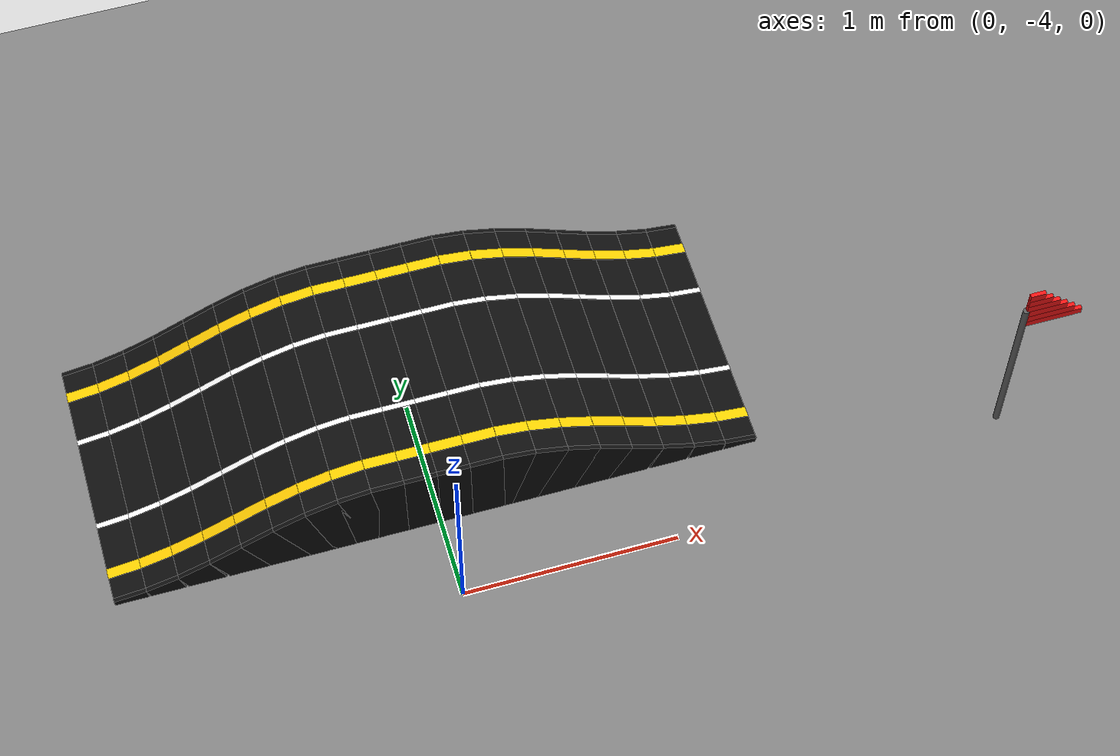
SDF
<sdf version="1.8">
 <world name="default">
  <model name="ground_plane">
   <static>true</static>
   <link name="link">
    <visual name="visual">
     <geometry><plane><normal>0 0 1</normal><size>100 100</size></plane></geometry>
     <material><ambient>0.5 0.5 0.5 1</ambient><diffuse>0.5 0.5 0.5 1</diffuse></material>
    </visual>
   </link>
  </model>
  <model name="race_B_start_finish_flag_outer">
   <static>true</static>
   <pose>2.60 -3.82 0.02 0 0 0</pose>
   <link name="flag_link">
    <collision name="pole_collision">
     <pose>0 0 0.45 0 0 0</pose>
     <geometry><cylinder><radius>0.015</radius><length>0.90</length></cylinder></geometry>
    </collision>
    <visual name="pole_visual">
     <pose>0 0 0.45 0 0 0</pose>
     <geometry><cylinder><radius>0.015</radius><length>0.90</length></cylinder></geometry>
     <material><ambient>0.25 0.25 0.25 1</ambient><diffuse>0.35 0.35 0.35 1</diffuse></material>
    </visual>
    <visual name="flag_bar_00_visual">
     <pose>0.135 0 0.80 0 0 0</pose>
     <geometry><box><size>0.27 0.018 0.035</size></box></geometry>
     <material>
      <ambient>0.85 0.05 0.05 1</ambient>
      <diffuse>0.95 0.08 0.08 1</diffuse>
      <emissive>0.10 0.00 0.00 1</emissive>
     </material>
    </visual>
    <visual name="flag_bar_01_visual">
     <pose>0.115 0 0.84 0 0 0</pose>
     <geometry><box><size>0.23 0.018 0.035</size></box></geometry>
     <material>
      <ambient>0.85 0.05 0.05 1</ambient>
      <diffuse>0.95 0.08 0.08 1</diffuse>
      <emissive>0.10 0.00 0.00 1</emissive>
     </material>
    </visual>
    <visual name="flag_bar_02_visual">
     <pose>0.095 0 0.88 0 0 0</pose>
     <geometry><box><size>0.19 0.018 0.035</size></box></geometry>
     <material>
      <ambient>0.85 0.05 0.05 1</ambient>
      <diffuse>0.95 0.08 0.08 1</diffuse>
      <emissive>0.10 0.00 0.00 1</emissive>
     </material>
    </visual>
    <visual name="flag_bar_03_visual">
     <pose>0.075 0 0.92 0 0 0</pose>
     <geometry><box><size>0.15 0.018 0.035</size></box></geometry>
     <material>
      <ambient>0.85 0.05 0.05 1</ambient>
      <diffuse>0.95 0.08 0.08 1</diffuse>
      <emissive>0.10 0.00 0.00 1</emissive>
     </material>
    </visual>
    <visual name="flag_bar_04_visual">
     <pose>0.055 0 0.96 0 0 0</pose>
     <geometry><box><size>0.11 0.018 0.035</size></box></geometry>
     <material>
      <ambient>0.85 0.05 0.05 1</ambient>
      <diffuse>0.95 0.08 0.08 1</diffuse>
      <emissive>0.10 0.00 0.00 1</emissive>
     </material>
    </visual>
    <visual name="flag_bar_05_visual">
     <pose>0.035 0 1.00 0 0 0</pose>
     <geometry><box><size>0.07 0.018 0.035</size></box></geometry>
     <material>
      <ambient>0.85 0.05 0.05 1</ambient>
      <diffuse>0.95 0.08 0.08 1</diffuse>
      <emissive>0.10 0.00 0.00 1</emissive>
     </material>
    </visual>
   </link>
  </model>
  <model name="race_A_ramp">
   <static>true</static>
   <pose>0 -3.0 0 0 0 0</pose>
   <link name="race_A_ramp_link">
    <collision name="race_A_ramp_seg_00_collision">
     <pose>1.422217 0 0.014735 0 0.139626 0</pose>
     <geometry><box><size>0.1515 1.20 0.04</size></box></geometry>
    </collision>
    <visual name="race_A_ramp_seg_00_visual">
     <pose>1.422217 0 0.014735 0 0.139626 0</pose>
     <geometry><box><size>0.1515 1.20 0.04</size></box></geometry>
     <material><ambient>0.05 0.05 0.05 1</ambient><diffuse>0.05 0.05 0.05 1</diffuse></material>
    </visual>
    <collision name="race_A_ramp_seg_01_collision">
     <pose>1.269487 0 0.047362 0 0.279253 0</pose>
     <geometry><box><size>0.1560 1.20 0.04</size></box></geometry>
    </collision>
    <visual name="race_A_ramp_seg_01_visual">
     <pose>1.269487 0 0.047362 0 0.279253 0</pose>
     <geometry><box><size>0.1560 1.20 0.04</size></box></geometry>
     <material><ambient>0.05 0.05 0.05 1</ambient><diffuse>0.05 0.05 0.05 1</diffuse></material>
    </visual>
    <collision name="race_A_ramp_seg_02_collision">
     <pose>1.117508 0 0.099851 0 0.383972 0</pose>
     <geometry><box><size>0.1618 1.20 0.04</size></box></geometry>
    </collision>
    <visual name="race_A_ramp_seg_02_visual">
     <pose>1.117508 0 0.099851 0 0.383972 0</pose>
     <geometry><box><size>0.1618 1.20 0.04</size></box></geometry>
     <material><ambient>0.05 0.05 0.05 1</ambient><diffuse>0.05 0.05 0.05 1</diffuse></material>
    </visual>
    <collision name="race_A_ramp_seg_03_collision">
     <pose>0.966233 0 0.167301 0 0.453786 0</pose>
     <geometry><box><size>0.1669 1.20 0.04</size></box></geometry>
    </collision>
    <visual name="race_A_ramp_seg_03_visual">
     <pose>0.966233 0 0.167301 0 0.453786 0</pose>
     <geometry><box><size>0.1669 1.20 0.04</size></box></geometry>
     <material><ambient>0.05 0.05 0.05 1</ambient><diffuse>0.05 0.05 0.05 1</diffuse></material>
    </visual>
    <collision name="race_A_ramp_seg_04_collision">
     <pose>0.816233 0 0.240461 0 0.453786 0</pose>
     <geometry><box><size>0.1669 1.20 0.04</size></box></geometry>
    </collision>
    <visual name="race_A_ramp_seg_04_visual">
     <pose>0.816233 0 0.240461 0 0.453786 0</pose>
     <geometry><box><size>0.1669 1.20 0.04</size></box></geometry>
     <material><ambient>0.05 0.05 0.05 1</ambient><diffuse>0.05 0.05 0.05 1</diffuse></material>
    </visual>
    <collision name="race_A_ramp_seg_05_collision">
     <pose>0.667508 0 0.306775 0 0.383972 0</pose>
     <geometry><box><size>0.1618 1.20 0.04</size></box></geometry>
    </collision>
    <visual name="race_A_ramp_seg_05_visual">
     <pose>0.667508 0 0.306775 0 0.383972 0</pose>
     <geometry><box><size>0.1618 1.20 0.04</size></box></geometry>
     <material><ambient>0.05 0.05 0.05 1</ambient><diffuse>0.05 0.05 0.05 1</diffuse></material>
    </visual>
    <collision name="race_A_ramp_seg_06_collision">
     <pose>0.519487 0 0.357901 0 0.279253 0</pose>
     <geometry><box><size>0.1560 1.20 0.04</size></box></geometry>
    </collision>
    <visual name="race_A_ramp_seg_06_visual">
     <pose>0.519487 0 0.357901 0 0.279253 0</pose>
     <geometry><box><size>0.1560 1.20 0.04</size></box></geometry>
     <material><ambient>0.05 0.05 0.05 1</ambient><diffuse>0.05 0.05 0.05 1</diffuse></material>
    </visual>
    <collision name="race_A_ramp_seg_07_collision">
     <pose>0.372217 0 0.389368 0 0.139626 0</pose>
     <geometry><box><size>0.1515 1.20 0.04</size></box></geometry>
    </collision>
    <visual name="race_A_ramp_seg_07_visual">
     <pose>0.372217 0 0.389368 0 0.139626 0</pose>
     <geometry><box><size>0.1515 1.20 0.04</size></box></geometry>
     <material><ambient>0.05 0.05 0.05 1</ambient><diffuse>0.05 0.05 0.05 1</diffuse></material>
    </visual>
    <collision name="race_A_ramp_seg_08_collision">
     <pose>0.225000 0 0.399714 0 0.000000 0</pose>
     <geometry><box><size>0.1500 1.20 0.04</size></box></geometry>
    </collision>
    <visual name="race_A_ramp_seg_08_visual">
     <pose>0.225000 0 0.399714 0 0.000000 0</pose>
     <geometry><box><size>0.1500 1.20 0.04</size></box></geometry>
     <material><ambient>0.05 0.05 0.05 1</ambient><diffuse>0.05 0.05 0.05 1</diffuse></material>
    </visual>
    <collision name="race_A_ramp_seg_09_collision">
     <pose>0.075000 0 0.399714 0 0.000000 0</pose>
     <geometry><box><size>0.1500 1.20 0.04</size></box></geometry>
    </collision>
    <visual name="race_A_ramp_seg_09_visual">
     <pose>0.075000 0 0.399714 0 0.000000 0</pose>
     <geometry><box><size>0.1500 1.20 0.04</size></box></geometry>
     <material><ambient>0.05 0.05 0.05 1</ambient><diffuse>0.05 0.05 0.05 1</diffuse></material>
    </visual>
    <collision name="race_A_ramp_seg_10_collision">
     <pose>-0.075000 0 0.399714 0 0.000000 0</pose>
     <geometry><box><size>0.1500 1.20 0.04</size></box></geometry>
    </collision>
    <visual name="race_A_ramp_seg_10_visual">
     <pose>-0.075000 0 0.399714 0 0.000000 0</pose>
     <geometry><box><size>0.1500 1.20 0.04</size></box></geometry>
     <material><ambient>0.05 0.05 0.05 1</ambient><diffuse>0.05 0.05 0.05 1</diffuse></material>
    </visual>
    <collision name="race_A_ramp_seg_11_collision">
     <pose>-0.225000 0 0.399714 0 0.000000 0</pose>
     <geometry><box><size>0.1500 1.20 0.04</size></box></geometry>
    </collision>
    <visual name="race_A_ramp_seg_11_visual">
     <pose>-0.225000 0 0.399714 0 0.000000 0</pose>
     <geometry><box><size>0.1500 1.20 0.04</size></box></geometry>
     <material><ambient>0.05 0.05 0.05 1</ambient><diffuse>0.05 0.05 0.05 1</diffuse></material>
    </visual>
    <collision name="race_A_ramp_seg_12_collision">
     <pose>-0.372217 0 0.389368 0 -0.139626 0</pose>
     <geometry><box><size>0.1515 1.20 0.04</size></box></geometry>
    </collision>
    <visual name="race_A_ramp_seg_12_visual">
     <pose>-0.372217 0 0.389368 0 -0.139626 0</pose>
     <geometry><box><size>0.1515 1.20 0.04</size></box></geometry>
     <material><ambient>0.05 0.05 0.05 1</ambient><diffuse>0.05 0.05 0.05 1</diffuse></material>
    </visual>
    <collision name="race_A_ramp_seg_13_collision">
     <pose>-0.519487 0 0.357901 0 -0.279253 0</pose>
     <geometry><box><size>0.1560 1.20 0.04</size></box></geometry>
    </collision>
    <visual name="race_A_ramp_seg_13_visual">
     <pose>-0.519487 0 0.357901 0 -0.279253 0</pose>
     <geometry><box><size>0.1560 1.20 0.04</size></box></geometry>
     <material><ambient>0.05 0.05 0.05 1</ambient><diffuse>0.05 0.05 0.05 1</diffuse></material>
    </visual>
    <collision name="race_A_ramp_seg_14_collision">
     <pose>-0.667508 0 0.306775 0 -0.383972 0</pose>
     <geometry><box><size>0.1618 1.20 0.04</size></box></geometry>
    </collision>
    <visual name="race_A_ramp_seg_14_visual">
     <pose>-0.667508 0 0.306775 0 -0.383972 0</pose>
     <geometry><box><size>0.1618 1.20 0.04</size></box></geometry>
     <material><ambient>0.05 0.05 0.05 1</ambient><diffuse>0.05 0.05 0.05 1</diffuse></material>
    </visual>
    <collision name="race_A_ramp_seg_15_collision">
     <pose>-0.816233 0 0.240461 0 -0.453786 0</pose>
     <geometry><box><size>0.1669 1.20 0.04</size></box></geometry>
    </collision>
    <visual name="race_A_ramp_seg_15_visual">
     <pose>-0.816233 0 0.240461 0 -0.453786 0</pose>
     <geometry><box><size>0.1669 1.20 0.04</size></box></geometry>
     <material><ambient>0.05 0.05 0.05 1</ambient><diffuse>0.05 0.05 0.05 1</diffuse></material>
    </visual>
    <collision name="race_A_ramp_seg_16_collision">
     <pose>-0.966233 0 0.167301 0 -0.453786 0</pose>
     <geometry><box><size>0.1669 1.20 0.04</size></box></geometry>
    </collision>
    <visual name="race_A_ramp_seg_16_visual">
     <pose>-0.966233 0 0.167301 0 -0.453786 0</pose>
     <geometry><box><size>0.1669 1.20 0.04</size></box></geometry>
     <material><ambient>0.05 0.05 0.05 1</ambient><diffuse>0.05 0.05 0.05 1</diffuse></material>
    </visual>
    <collision name="race_A_ramp_seg_17_collision">
     <pose>-1.117508 0 0.099851 0 -0.383972 0</pose>
     <geometry><box><size>0.1618 1.20 0.04</size></box></geometry>
    </collision>
    <visual name="race_A_ramp_seg_17_visual">
     <pose>-1.117508 0 0.099851 0 -0.383972 0</pose>
     <geometry><box><size>0.1618 1.20 0.04</size></box></geometry>
     <material><ambient>0.05 0.05 0.05 1</ambient><diffuse>0.05 0.05 0.05 1</diffuse></material>
    </visual>
    <collision name="race_A_ramp_seg_18_collision">
     <pose>-1.269487 0 0.047362 0 -0.279253 0</pose>
     <geometry><box><size>0.1560 1.20 0.04</size></box></geometry>
    </collision>
    <visual name="race_A_ramp_seg_18_visual">
     <pose>-1.269487 0 0.047362 0 -0.279253 0</pose>
     <geometry><box><size>0.1560 1.20 0.04</size></box></geometry>
     <material><ambient>0.05 0.05 0.05 1</ambient><diffuse>0.05 0.05 0.05 1</diffuse></material>
    </visual>
    <collision name="race_A_ramp_seg_19_collision">
     <pose>-1.422217 0 0.014735 0 -0.139626 0</pose>
     <geometry><box><size>0.1515 1.20 0.04</size></box></geometry>
    </collision>
    <visual name="race_A_ramp_seg_19_visual">
     <pose>-1.422217 0 0.014735 0 -0.139626 0</pose>
     <geometry><box><size>0.1515 1.20 0.04</size></box></geometry>
     <material><ambient>0.05 0.05 0.05 1</ambient><diffuse>0.05 0.05 0.05 1</diffuse></material>
    </visual>
    <visual name="race_A_ramp_left_side_cover_seg_00_visual">
     <pose>1.417030 0.61 -0.022172 0 0.139626 0</pose>
     <geometry><box><size>0.1515 0.02 0.1145</size></box></geometry>
     <material><ambient>0.05 0.05 0.05 1</ambient><diffuse>0.05 0.05 0.05 1</diffuse></material>
    </visual>
    <visual name="race_A_ramp_left_side_cover_seg_01_visual">
     <pose>1.254798 0.61 -0.003867 0 0.279253 0</pose>
     <geometry><box><size>0.1560 0.02 0.1466</size></box></geometry>
     <material><ambient>0.05 0.05 0.05 1</ambient><diffuse>0.05 0.05 0.05 1</diffuse></material>
    </visual>
    <visual name="race_A_ramp_left_side_cover_seg_02_visual">
     <pose>1.087840 0.61 0.026421 0 0.383972 0</pose>
     <geometry><box><size>0.1618 0.02 0.1984</size></box></geometry>
     <material><ambient>0.05 0.05 0.05 1</ambient><diffuse>0.05 0.05 0.05 1</diffuse></material>
    </visual>
    <visual name="race_A_ramp_left_side_cover_seg_03_visual">
     <pose>0.916855 0.61 0.066062 0 0.453786 0</pose>
     <geometry><box><size>0.1669 0.02 0.2653</size></box></geometry>
     <material><ambient>0.05 0.05 0.05 1</ambient><diffuse>0.05 0.05 0.05 1</diffuse></material>
    </visual>
    <visual name="race_A_ramp_left_side_cover_seg_04_visual">
     <pose>0.750820 0.61 0.106344 0 0.453786 0</pose>
     <geometry><box><size>0.1669 0.02 0.3384</size></box></geometry>
     <material><ambient>0.05 0.05 0.05 1</ambient><diffuse>0.05 0.05 0.05 1</diffuse></material>
    </visual>
    <visual name="race_A_ramp_left_side_cover_seg_05_visual">
     <pose>0.599082 0.61 0.137416 0 0.383972 0</pose>
     <geometry><box><size>0.1618 0.02 0.4053</size></box></geometry>
     <material><ambient>0.05 0.05 0.05 1</ambient><diffuse>0.05 0.05 0.05 1</diffuse></material>
    </visual>
    <visual name="race_A_ramp_left_side_cover_seg_06_visual">
     <pose>0.461999 0.61 0.157417 0 0.279253 0</pose>
     <geometry><box><size>0.1560 0.02 0.4571</size></box></geometry>
     <material><ambient>0.05 0.05 0.05 1</ambient><diffuse>0.05 0.05 0.05 1</diffuse></material>
    </visual>
    <visual name="race_A_ramp_left_side_cover_seg_07_visual">
     <pose>0.340960 0.61 0.166967 0 0.139626 0</pose>
     <geometry><box><size>0.1515 0.02 0.4892</size></box></geometry>
     <material><ambient>0.05 0.05 0.05 1</ambient><diffuse>0.05 0.05 0.05 1</diffuse></material>
    </visual>
    <visual name="race_A_ramp_left_side_cover_seg_08_visual">
     <pose>0.225000 0.61 0.169857 0 0.000000 0</pose>
     <geometry><box><size>0.1500 0.02 0.4997</size></box></geometry>
     <material><ambient>0.05 0.05 0.05 1</ambient><diffuse>0.05 0.05 0.05 1</diffuse></material>
    </visual>
    <visual name="race_A_ramp_left_side_cover_seg_09_visual">
     <pose>0.075000 0.61 0.169857 0 0.000000 0</pose>
     <geometry><box><size>0.1500 0.02 0.4997</size></box></geometry>
     <material><ambient>0.05 0.05 0.05 1</ambient><diffuse>0.05 0.05 0.05 1</diffuse></material>
    </visual>
    <visual name="race_A_ramp_left_side_cover_seg_10_visual">
     <pose>-0.075000 0.61 0.169857 0 0.000000 0</pose>
     <geometry><box><size>0.1500 0.02 0.4997</size></box></geometry>
     <material><ambient>0.05 0.05 0.05 1</ambient><diffuse>0.05 0.05 0.05 1</diffuse></material>
    </visual>
    <visual name="race_A_ramp_left_side_cover_seg_11_visual">
     <pose>-0.225000 0.61 0.169857 0 0.000000 0</pose>
     <geometry><box><size>0.1500 0.02 0.4997</size></box></geometry>
     <material><ambient>0.05 0.05 0.05 1</ambient><diffuse>0.05 0.05 0.05 1</diffuse></material>
    </visual>
    <visual name="race_A_ramp_left_side_cover_seg_12_visual">
     <pose>-0.340960 0.61 0.166967 0 -0.139626 0</pose>
     <geometry><box><size>0.1515 0.02 0.4892</size></box></geometry>
     <material><ambient>0.05 0.05 0.05 1</ambient><diffuse>0.05 0.05 0.05 1</diffuse></material>
    </visual>
    <visual name="race_A_ramp_left_side_cover_seg_13_visual">
     <pose>-0.461999 0.61 0.157417 0 -0.279253 0</pose>
     <geometry><box><size>0.1560 0.02 0.4571</size></box></geometry>
     <material><ambient>0.05 0.05 0.05 1</ambient><diffuse>0.05 0.05 0.05 1</diffuse></material>
    </visual>
    <visual name="race_A_ramp_left_side_cover_seg_14_visual">
     <pose>-0.599082 0.61 0.137416 0 -0.383972 0</pose>
     <geometry><box><size>0.1618 0.02 0.4053</size></box></geometry>
     <material><ambient>0.05 0.05 0.05 1</ambient><diffuse>0.05 0.05 0.05 1</diffuse></material>
    </visual>
    <visual name="race_A_ramp_left_side_cover_seg_15_visual">
     <pose>-0.750820 0.61 0.106344 0 -0.453786 0</pose>
     <geometry><box><size>0.1669 0.02 0.3384</size></box></geometry>
     <material><ambient>0.05 0.05 0.05 1</ambient><diffuse>0.05 0.05 0.05 1</diffuse></material>
    </visual>
    <visual name="race_A_ramp_left_side_cover_seg_16_visual">
     <pose>-0.916855 0.61 0.066062 0 -0.453786 0</pose>
     <geometry><box><size>0.1669 0.02 0.2653</size></box></geometry>
     <material><ambient>0.05 0.05 0.05 1</ambient><diffuse>0.05 0.05 0.05 1</diffuse></material>
    </visual>
    <visual name="race_A_ramp_left_side_cover_seg_17_visual">
     <pose>-1.087840 0.61 0.026421 0 -0.383972 0</pose>
     <geometry><box><size>0.1618 0.02 0.1984</size></box></geometry>
     <material><ambient>0.05 0.05 0.05 1</ambient><diffuse>0.05 0.05 0.05 1</diffuse></material>
    </visual>
    <visual name="race_A_ramp_left_side_cover_seg_18_visual">
     <pose>-1.254798 0.61 -0.003867 0 -0.279253 0</pose>
     <geometry><box><size>0.1560 0.02 0.1466</size></box></geometry>
     <material><ambient>0.05 0.05 0.05 1</ambient><diffuse>0.05 0.05 0.05 1</diffuse></material>
    </visual>
    <visual name="race_A_ramp_left_side_cover_seg_19_visual">
     <pose>-1.417030 0.61 -0.022172 0 -0.139626 0</pose>
     <geometry><box><size>0.1515 0.02 0.1145</size></box></geometry>
     <material><ambient>0.05 0.05 0.05 1</ambient><diffuse>0.05 0.05 0.05 1</diffuse></material>
    </visual>
    <visual name="race_A_ramp_right_side_cover_seg_00_visual">
     <pose>1.417030 -0.61 -0.022172 0 0.139626 0</pose>
     <geometry><box><size>0.1515 0.02 0.1145</size></box></geometry>
     <material><ambient>0.05 0.05 0.05 1</ambient><diffuse>0.05 0.05 0.05 1</diffuse></material>
    </visual>
    <visual name="race_A_ramp_right_side_cover_seg_01_visual">
     <pose>1.254798 -0.61 -0.003867 0 0.279253 0</pose>
     <geometry><box><size>0.1560 0.02 0.1466</size></box></geometry>
     <material><ambient>0.05 0.05 0.05 1</ambient><diffuse>0.05 0.05 0.05 1</diffuse></material>
    </visual>
    <visual name="race_A_ramp_right_side_cover_seg_02_visual">
     <pose>1.087840 -0.61 0.026421 0 0.383972 0</pose>
     <geometry><box><size>0.1618 0.02 0.1984</size></box></geometry>
     <material><ambient>0.05 0.05 0.05 1</ambient><diffuse>0.05 0.05 0.05 1</diffuse></material>
    </visual>
    <visual name="race_A_ramp_right_side_cover_seg_03_visual">
     <pose>0.916855 -0.61 0.066062 0 0.453786 0</pose>
     <geometry><box><size>0.1669 0.02 0.2653</size></box></geometry>
     <material><ambient>0.05 0.05 0.05 1</ambient><diffuse>0.05 0.05 0.05 1</diffuse></material>
    </visual>
    <visual name="race_A_ramp_right_side_cover_seg_04_visual">
     <pose>0.750820 -0.61 0.106344 0 0.453786 0</pose>
     <geometry><box><size>0.1669 0.02 0.3384</size></box></geometry>
     <material><ambient>0.05 0.05 0.05 1</ambient><diffuse>0.05 0.05 0.05 1</diffuse></material>
    </visual>
    <visual name="race_A_ramp_right_side_cover_seg_05_visual">
     <pose>0.599082 -0.61 0.137416 0 0.383972 0</pose>
     <geometry><box><size>0.1618 0.02 0.4053</size></box></geometry>
     <material><ambient>0.05 0.05 0.05 1</ambient><diffuse>0.05 0.05 0.05 1</diffuse></material>
    </visual>
    <visual name="race_A_ramp_right_side_cover_seg_06_visual">
     <pose>0.461999 -0.61 0.157417 0 0.279253 0</pose>
     <geometry><box><size>0.1560 0.02 0.4571</size></box></geometry>
     <material><ambient>0.05 0.05 0.05 1</ambient><diffuse>0.05 0.05 0.05 1</diffuse></material>
    </visual>
    <visual name="race_A_ramp_right_side_cover_seg_07_visual">
     <pose>0.340960 -0.61 0.166967 0 0.139626 0</pose>
     <geometry><box><size>0.1515 0.02 0.4892</size></box></geometry>
     <material><ambient>0.05 0.05 0.05 1</ambient><diffuse>0.05 0.05 0.05 1</diffuse></material>
    </visual>
    <visual name="race_A_ramp_right_side_cover_seg_08_visual">
     <pose>0.225000 -0.61 0.169857 0 0.000000 0</pose>
     <geometry><box><size>0.1500 0.02 0.4997</size></box></geometry>
     <material><ambient>0.05 0.05 0.05 1</ambient><diffuse>0.05 0.05 0.05 1</diffuse></material>
    </visual>
    <visual name="race_A_ramp_right_side_cover_seg_09_visual">
     <pose>0.075000 -0.61 0.169857 0 0.000000 0</pose>
     <geometry><box><size>0.1500 0.02 0.4997</size></box></geometry>
     <material><ambient>0.05 0.05 0.05 1</ambient><diffuse>0.05 0.05 0.05 1</diffuse></material>
    </visual>
    <visual name="race_A_ramp_right_side_cover_seg_10_visual">
     <pose>-0.075000 -0.61 0.169857 0 0.000000 0</pose>
     <geometry><box><size>0.1500 0.02 0.4997</size></box></geometry>
     <material><ambient>0.05 0.05 0.05 1</ambient><diffuse>0.05 0.05 0.05 1</diffuse></material>
    </visual>
    <visual name="race_A_ramp_right_side_cover_seg_11_visual">
     <pose>-0.225000 -0.61 0.169857 0 0.000000 0</pose>
     <geometry><box><size>0.1500 0.02 0.4997</size></box></geometry>
     <material><ambient>0.05 0.05 0.05 1</ambient><diffuse>0.05 0.05 0.05 1</diffuse></material>
    </visual>
    <visual name="race_A_ramp_right_side_cover_seg_12_visual">
     <pose>-0.340960 -0.61 0.166967 0 -0.139626 0</pose>
     <geometry><box><size>0.1515 0.02 0.4892</size></box></geometry>
     <material><ambient>0.05 0.05 0.05 1</ambient><diffuse>0.05 0.05 0.05 1</diffuse></material>
    </visual>
    <visual name="race_A_ramp_right_side_cover_seg_13_visual">
     <pose>-0.461999 -0.61 0.157417 0 -0.279253 0</pose>
     <geometry><box><size>0.1560 0.02 0.4571</size></box></geometry>
     <material><ambient>0.05 0.05 0.05 1</ambient><diffuse>0.05 0.05 0.05 1</diffuse></material>
    </visual>
    <visual name="race_A_ramp_right_side_cover_seg_14_visual">
     <pose>-0.599082 -0.61 0.137416 0 -0.383972 0</pose>
     <geometry><box><size>0.1618 0.02 0.4053</size></box></geometry>
     <material><ambient>0.05 0.05 0.05 1</ambient><diffuse>0.05 0.05 0.05 1</diffuse></material>
    </visual>
    <visual name="race_A_ramp_right_side_cover_seg_15_visual">
     <pose>-0.750820 -0.61 0.106344 0 -0.453786 0</pose>
     <geometry><box><size>0.1669 0.02 0.3384</size></box></geometry>
     <material><ambient>0.05 0.05 0.05 1</ambient><diffuse>0.05 0.05 0.05 1</diffuse></material>
    </visual>
    <visual name="race_A_ramp_right_side_cover_seg_16_visual">
     <pose>-0.916855 -0.61 0.066062 0 -0.453786 0</pose>
     <geometry><box><size>0.1669 0.02 0.2653</size></box></geometry>
     <material><ambient>0.05 0.05 0.05 1</ambient><diffuse>0.05 0.05 0.05 1</diffuse></material>
    </visual>
    <visual name="race_A_ramp_right_side_cover_seg_17_visual">
     <pose>-1.087840 -0.61 0.026421 0 -0.383972 0</pose>
     <geometry><box><size>0.1618 0.02 0.1984</size></box></geometry>
     <material><ambient>0.05 0.05 0.05 1</ambient><diffuse>0.05 0.05 0.05 1</diffuse></material>
    </visual>
    <visual name="race_A_ramp_right_side_cover_seg_18_visual">
     <pose>-1.254798 -0.61 -0.003867 0 -0.279253 0</pose>
     <geometry><box><size>0.1560 0.02 0.1466</size></box></geometry>
     <material><ambient>0.05 0.05 0.05 1</ambient><diffuse>0.05 0.05 0.05 1</diffuse></material>
    </visual>
    <visual name="race_A_ramp_right_side_cover_seg_19_visual">
     <pose>-1.417030 -0.61 -0.022172 0 -0.139626 0</pose>
     <geometry><box><size>0.1515 0.02 0.1145</size></box></geometry>
     <material><ambient>0.05 0.05 0.05 1</ambient><diffuse>0.05 0.05 0.05 1</diffuse></material>
    </visual>
    <visual name="race_A_ramp_yel_out_seg_00_visual">
     <pose>1.425278 -0.475 0.036521 0 0.139626 0</pose>
     <geometry><box><size>0.1515 0.050 0.002</size></box></geometry>
     <material><ambient>1.0 0.8 0.0 1</ambient><diffuse>1.0 0.8 0.0 1</diffuse></material>
    </visual>
    <visual name="race_A_ramp_whi_out_seg_00_visual">
     <pose>1.425278 -0.225 0.036521 0 0.139626 0</pose>
     <geometry><box><size>0.1515 0.025 0.002</size></box></geometry>
     <material><ambient>1.0 1.0 1.0 1</ambient><diffuse>1.0 1.0 1.0 1</diffuse></material>
    </visual>
    <visual name="race_A_ramp_whi_in_seg_00_visual">
     <pose>1.425278 0.225 0.036521 0 0.139626 0</pose>
     <geometry><box><size>0.1515 0.025 0.002</size></box></geometry>
     <material><ambient>1.0 1.0 1.0 1</ambient><diffuse>1.0 1.0 1.0 1</diffuse></material>
    </visual>
    <visual name="race_A_ramp_yel_in_seg_00_visual">
     <pose>1.425278 0.475 0.036521 0 0.139626 0</pose>
     <geometry><box><size>0.1515 0.050 0.002</size></box></geometry>
     <material><ambient>1.0 0.8 0.0 1</ambient><diffuse>1.0 0.8 0.0 1</diffuse></material>
    </visual>
    <visual name="race_A_ramp_yel_out_seg_01_visual">
     <pose>1.275551 -0.475 0.068510 0 0.279253 0</pose>
     <geometry><box><size>0.1560 0.050 0.002</size></box></geometry>
     <material><ambient>1.0 0.8 0.0 1</ambient><diffuse>1.0 0.8 0.0 1</diffuse></material>
    </visual>
    <visual name="race_A_ramp_whi_out_seg_01_visual">
     <pose>1.275551 -0.225 0.068510 0 0.279253 0</pose>
     <geometry><box><size>0.1560 0.025 0.002</size></box></geometry>
     <material><ambient>1.0 1.0 1.0 1</ambient><diffuse>1.0 1.0 1.0 1</diffuse></material>
    </visual>
    <visual name="race_A_ramp_whi_in_seg_01_visual">
     <pose>1.275551 0.225 0.068510 0 0.279253 0</pose>
     <geometry><box><size>0.1560 0.025 0.002</size></box></geometry>
     <material><ambient>1.0 1.0 1.0 1</ambient><diffuse>1.0 1.0 1.0 1</diffuse></material>
    </visual>
    <visual name="race_A_ramp_yel_in_seg_01_visual">
     <pose>1.275551 0.475 0.068510 0 0.279253 0</pose>
     <geometry><box><size>0.1560 0.050 0.002</size></box></geometry>
     <material><ambient>1.0 0.8 0.0 1</ambient><diffuse>1.0 0.8 0.0 1</diffuse></material>
    </visual>
    <visual name="race_A_ramp_yel_out_seg_02_visual">
     <pose>1.125749 -0.475 0.120249 0 0.383972 0</pose>
     <geometry><box><size>0.1618 0.050 0.002</size></box></geometry>
     <material><ambient>1.0 0.8 0.0 1</ambient><diffuse>1.0 0.8 0.0 1</diffuse></material>
    </visual>
    <visual name="race_A_ramp_whi_out_seg_02_visual">
     <pose>1.125749 -0.225 0.120249 0 0.383972 0</pose>
     <geometry><box><size>0.1618 0.025 0.002</size></box></geometry>
     <material><ambient>1.0 1.0 1.0 1</ambient><diffuse>1.0 1.0 1.0 1</diffuse></material>
    </visual>
    <visual name="race_A_ramp_whi_in_seg_02_visual">
     <pose>1.125749 0.225 0.120249 0 0.383972 0</pose>
     <geometry><box><size>0.1618 0.025 0.002</size></box></geometry>
     <material><ambient>1.0 1.0 1.0 1</ambient><diffuse>1.0 1.0 1.0 1</diffuse></material>
    </visual>
    <visual name="race_A_ramp_yel_in_seg_02_visual">
     <pose>1.125749 0.475 0.120249 0 0.383972 0</pose>
     <geometry><box><size>0.1618 0.050 0.002</size></box></geometry>
     <material><ambient>1.0 0.8 0.0 1</ambient><diffuse>1.0 0.8 0.0 1</diffuse></material>
    </visual>
    <visual name="race_A_ramp_yel_out_seg_03_visual">
     <pose>0.975877 -0.475 0.187074 0 0.453786 0</pose>
     <geometry><box><size>0.1669 0.050 0.002</size></box></geometry>
     <material><ambient>1.0 0.8 0.0 1</ambient><diffuse>1.0 0.8 0.0 1</diffuse></material>
    </visual>
    <visual name="race_A_ramp_whi_out_seg_03_visual">
     <pose>0.975877 -0.225 0.187074 0 0.453786 0</pose>
     <geometry><box><size>0.1669 0.025 0.002</size></box></geometry>
     <material><ambient>1.0 1.0 1.0 1</ambient><diffuse>1.0 1.0 1.0 1</diffuse></material>
    </visual>
    <visual name="race_A_ramp_whi_in_seg_03_visual">
     <pose>0.975877 0.225 0.187074 0 0.453786 0</pose>
     <geometry><box><size>0.1669 0.025 0.002</size></box></geometry>
     <material><ambient>1.0 1.0 1.0 1</ambient><diffuse>1.0 1.0 1.0 1</diffuse></material>
    </visual>
    <visual name="race_A_ramp_yel_in_seg_03_visual">
     <pose>0.975877 0.475 0.187074 0 0.453786 0</pose>
     <geometry><box><size>0.1669 0.050 0.002</size></box></geometry>
     <material><ambient>1.0 0.8 0.0 1</ambient><diffuse>1.0 0.8 0.0 1</diffuse></material>
    </visual>
    <visual name="race_A_ramp_yel_out_seg_04_visual">
     <pose>0.825877 -0.475 0.260234 0 0.453786 0</pose>
     <geometry><box><size>0.1669 0.050 0.002</size></box></geometry>
     <material><ambient>1.0 0.8 0.0 1</ambient><diffuse>1.0 0.8 0.0 1</diffuse></material>
    </visual>
    <visual name="race_A_ramp_whi_out_seg_04_visual">
     <pose>0.825877 -0.225 0.260234 0 0.453786 0</pose>
     <geometry><box><size>0.1669 0.025 0.002</size></box></geometry>
     <material><ambient>1.0 1.0 1.0 1</ambient><diffuse>1.0 1.0 1.0 1</diffuse></material>
    </visual>
    <visual name="race_A_ramp_whi_in_seg_04_visual">
     <pose>0.825877 0.225 0.260234 0 0.453786 0</pose>
     <geometry><box><size>0.1669 0.025 0.002</size></box></geometry>
     <material><ambient>1.0 1.0 1.0 1</ambient><diffuse>1.0 1.0 1.0 1</diffuse></material>
    </visual>
    <visual name="race_A_ramp_yel_in_seg_04_visual">
     <pose>0.825877 0.475 0.260234 0 0.453786 0</pose>
     <geometry><box><size>0.1669 0.050 0.002</size></box></geometry>
     <material><ambient>1.0 0.8 0.0 1</ambient><diffuse>1.0 0.8 0.0 1</diffuse></material>
    </visual>
    <visual name="race_A_ramp_yel_out_seg_05_visual">
     <pose>0.675749 -0.475 0.327173 0 0.383972 0</pose>
     <geometry><box><size>0.1618 0.050 0.002</size></box></geometry>
     <material><ambient>1.0 0.8 0.0 1</ambient><diffuse>1.0 0.8 0.0 1</diffuse></material>
    </visual>
    <visual name="race_A_ramp_whi_out_seg_05_visual">
     <pose>0.675749 -0.225 0.327173 0 0.383972 0</pose>
     <geometry><box><size>0.1618 0.025 0.002</size></box></geometry>
     <material><ambient>1.0 1.0 1.0 1</ambient><diffuse>1.0 1.0 1.0 1</diffuse></material>
    </visual>
    <visual name="race_A_ramp_whi_in_seg_05_visual">
     <pose>0.675749 0.225 0.327173 0 0.383972 0</pose>
     <geometry><box><size>0.1618 0.025 0.002</size></box></geometry>
     <material><ambient>1.0 1.0 1.0 1</ambient><diffuse>1.0 1.0 1.0 1</diffuse></material>
    </visual>
    <visual name="race_A_ramp_yel_in_seg_05_visual">
     <pose>0.675749 0.475 0.327173 0 0.383972 0</pose>
     <geometry><box><size>0.1618 0.050 0.002</size></box></geometry>
     <material><ambient>1.0 0.8 0.0 1</ambient><diffuse>1.0 0.8 0.0 1</diffuse></material>
    </visual>
    <visual name="race_A_ramp_yel_out_seg_06_visual">
     <pose>0.525551 -0.475 0.379049 0 0.279253 0</pose>
     <geometry><box><size>0.1560 0.050 0.002</size></box></geometry>
     <material><ambient>1.0 0.8 0.0 1</ambient><diffuse>1.0 0.8 0.0 1</diffuse></material>
    </visual>
    <visual name="race_A_ramp_whi_out_seg_06_visual">
     <pose>0.525551 -0.225 0.379049 0 0.279253 0</pose>
     <geometry><box><size>0.1560 0.025 0.002</size></box></geometry>
     <material><ambient>1.0 1.0 1.0 1</ambient><diffuse>1.0 1.0 1.0 1</diffuse></material>
    </visual>
    <visual name="race_A_ramp_whi_in_seg_06_visual">
     <pose>0.525551 0.225 0.379049 0 0.279253 0</pose>
     <geometry><box><size>0.1560 0.025 0.002</size></box></geometry>
     <material><ambient>1.0 1.0 1.0 1</ambient><diffuse>1.0 1.0 1.0 1</diffuse></material>
    </visual>
    <visual name="race_A_ramp_yel_in_seg_06_visual">
     <pose>0.525551 0.475 0.379049 0 0.279253 0</pose>
     <geometry><box><size>0.1560 0.050 0.002</size></box></geometry>
     <material><ambient>1.0 0.8 0.0 1</ambient><diffuse>1.0 0.8 0.0 1</diffuse></material>
    </visual>
    <visual name="race_A_ramp_yel_out_seg_07_visual">
     <pose>0.375278 -0.475 0.411153 0 0.139626 0</pose>
     <geometry><box><size>0.1515 0.050 0.002</size></box></geometry>
     <material><ambient>1.0 0.8 0.0 1</ambient><diffuse>1.0 0.8 0.0 1</diffuse></material>
    </visual>
    <visual name="race_A_ramp_whi_out_seg_07_visual">
     <pose>0.375278 -0.225 0.411153 0 0.139626 0</pose>
     <geometry><box><size>0.1515 0.025 0.002</size></box></geometry>
     <material><ambient>1.0 1.0 1.0 1</ambient><diffuse>1.0 1.0 1.0 1</diffuse></material>
    </visual>
    <visual name="race_A_ramp_whi_in_seg_07_visual">
     <pose>0.375278 0.225 0.411153 0 0.139626 0</pose>
     <geometry><box><size>0.1515 0.025 0.002</size></box></geometry>
     <material><ambient>1.0 1.0 1.0 1</ambient><diffuse>1.0 1.0 1.0 1</diffuse></material>
    </visual>
    <visual name="race_A_ramp_yel_in_seg_07_visual">
     <pose>0.375278 0.475 0.411153 0 0.139626 0</pose>
     <geometry><box><size>0.1515 0.050 0.002</size></box></geometry>
     <material><ambient>1.0 0.8 0.0 1</ambient><diffuse>1.0 0.8 0.0 1</diffuse></material>
    </visual>
    <visual name="race_A_ramp_yel_out_seg_08_visual">
     <pose>0.225000 -0.475 0.421714 0 0.000000 0</pose>
     <geometry><box><size>0.1500 0.050 0.002</size></box></geometry>
     <material><ambient>1.0 0.8 0.0 1</ambient><diffuse>1.0 0.8 0.0 1</diffuse></material>
    </visual>
    <visual name="race_A_ramp_whi_out_seg_08_visual">
     <pose>0.225000 -0.225 0.421714 0 0.000000 0</pose>
     <geometry><box><size>0.1500 0.025 0.002</size></box></geometry>
     <material><ambient>1.0 1.0 1.0 1</ambient><diffuse>1.0 1.0 1.0 1</diffuse></material>
    </visual>
    <visual name="race_A_ramp_whi_in_seg_08_visual">
     <pose>0.225000 0.225 0.421714 0 0.000000 0</pose>
     <geometry><box><size>0.1500 0.025 0.002</size></box></geometry>
     <material><ambient>1.0 1.0 1.0 1</ambient><diffuse>1.0 1.0 1.0 1</diffuse></material>
    </visual>
    <visual name="race_A_ramp_yel_in_seg_08_visual">
     <pose>0.225000 0.475 0.421714 0 0.000000 0</pose>
     <geometry><box><size>0.1500 0.050 0.002</size></box></geometry>
     <material><ambient>1.0 0.8 0.0 1</ambient><diffuse>1.0 0.8 0.0 1</diffuse></material>
    </visual>
    <visual name="race_A_ramp_yel_out_seg_09_visual">
     <pose>0.075000 -0.475 0.421714 0 0.000000 0</pose>
     <geometry><box><size>0.1500 0.050 0.002</size></box></geometry>
     <material><ambient>1.0 0.8 0.0 1</ambient><diffuse>1.0 0.8 0.0 1</diffuse></material>
    </visual>
    <visual name="race_A_ramp_whi_out_seg_09_visual">
     <pose>0.075000 -0.225 0.421714 0 0.000000 0</pose>
     <geometry><box><size>0.1500 0.025 0.002</size></box></geometry>
     <material><ambient>1.0 1.0 1.0 1</ambient><diffuse>1.0 1.0 1.0 1</diffuse></material>
    </visual>
    <visual name="race_A_ramp_whi_in_seg_09_visual">
     <pose>0.075000 0.225 0.421714 0 0.000000 0</pose>
     <geometry><box><size>0.1500 0.025 0.002</size></box></geometry>
     <material><ambient>1.0 1.0 1.0 1</ambient><diffuse>1.0 1.0 1.0 1</diffuse></material>
    </visual>
    <visual name="race_A_ramp_yel_in_seg_09_visual">
     <pose>0.075000 0.475 0.421714 0 0.000000 0</pose>
     <geometry><box><size>0.1500 0.050 0.002</size></box></geometry>
     <material><ambient>1.0 0.8 0.0 1</ambient><diffuse>1.0 0.8 0.0 1</diffuse></material>
    </visual>
    <visual name="race_A_ramp_yel_out_seg_10_visual">
     <pose>-0.075000 -0.475 0.421714 0 0.000000 0</pose>
     <geometry><box><size>0.1500 0.050 0.002</size></box></geometry>
     <material><ambient>1.0 0.8 0.0 1</ambient><diffuse>1.0 0.8 0.0 1</diffuse></material>
    </visual>
    <visual name="race_A_ramp_whi_out_seg_10_visual">
     <pose>-0.075000 -0.225 0.421714 0 0.000000 0</pose>
     <geometry><box><size>0.1500 0.025 0.002</size></box></geometry>
     <material><ambient>1.0 1.0 1.0 1</ambient><diffuse>1.0 1.0 1.0 1</diffuse></material>
    </visual>
    <visual name="race_A_ramp_whi_in_seg_10_visual">
     <pose>-0.075000 0.225 0.421714 0 0.000000 0</pose>
     <geometry><box><size>0.1500 0.025 0.002</size></box></geometry>
     <material><ambient>1.0 1.0 1.0 1</ambient><diffuse>1.0 1.0 1.0 1</diffuse></material>
    </visual>
    <visual name="race_A_ramp_yel_in_seg_10_visual">
     <pose>-0.075000 0.475 0.421714 0 0.000000 0</pose>
     <geometry><box><size>0.1500 0.050 0.002</size></box></geometry>
     <material><ambient>1.0 0.8 0.0 1</ambient><diffuse>1.0 0.8 0.0 1</diffuse></material>
    </visual>
    <visual name="race_A_ramp_yel_out_seg_11_visual">
     <pose>-0.225000 -0.475 0.421714 0 0.000000 0</pose>
     <geometry><box><size>0.1500 0.050 0.002</size></box></geometry>
     <material><ambient>1.0 0.8 0.0 1</ambient><diffuse>1.0 0.8 0.0 1</diffuse></material>
    </visual>
    <visual name="race_A_ramp_whi_out_seg_11_visual">
     <pose>-0.225000 -0.225 0.421714 0 0.000000 0</pose>
     <geometry><box><size>0.1500 0.025 0.002</size></box></geometry>
     <material><ambient>1.0 1.0 1.0 1</ambient><diffuse>1.0 1.0 1.0 1</diffuse></material>
    </visual>
    <visual name="race_A_ramp_whi_in_seg_11_visual">
     <pose>-0.225000 0.225 0.421714 0 0.000000 0</pose>
     <geometry><box><size>0.1500 0.025 0.002</size></box></geometry>
     <material><ambient>1.0 1.0 1.0 1</ambient><diffuse>1.0 1.0 1.0 1</diffuse></material>
    </visual>
    <visual name="race_A_ramp_yel_in_seg_11_visual">
     <pose>-0.225000 0.475 0.421714 0 0.000000 0</pose>
     <geometry><box><size>0.1500 0.050 0.002</size></box></geometry>
     <material><ambient>1.0 0.8 0.0 1</ambient><diffuse>1.0 0.8 0.0 1</diffuse></material>
    </visual>
    <visual name="race_A_ramp_yel_out_seg_12_visual">
     <pose>-0.375278 -0.475 0.411153 0 -0.139626 0</pose>
     <geometry><box><size>0.1515 0.050 0.002</size></box></geometry>
     <material><ambient>1.0 0.8 0.0 1</ambient><diffuse>1.0 0.8 0.0 1</diffuse></material>
    </visual>
    <visual name="race_A_ramp_whi_out_seg_12_visual">
     <pose>-0.375278 -0.225 0.411153 0 -0.139626 0</pose>
     <geometry><box><size>0.1515 0.025 0.002</size></box></geometry>
     <material><ambient>1.0 1.0 1.0 1</ambient><diffuse>1.0 1.0 1.0 1</diffuse></material>
    </visual>
    <visual name="race_A_ramp_whi_in_seg_12_visual">
     <pose>-0.375278 0.225 0.411153 0 -0.139626 0</pose>
     <geometry><box><size>0.1515 0.025 0.002</size></box></geometry>
     <material><ambient>1.0 1.0 1.0 1</ambient><diffuse>1.0 1.0 1.0 1</diffuse></material>
    </visual>
    <visual name="race_A_ramp_yel_in_seg_12_visual">
     <pose>-0.375278 0.475 0.411153 0 -0.139626 0</pose>
     <geometry><box><size>0.1515 0.050 0.002</size></box></geometry>
     <material><ambient>1.0 0.8 0.0 1</ambient><diffuse>1.0 0.8 0.0 1</diffuse></material>
    </visual>
    <visual name="race_A_ramp_yel_out_seg_13_visual">
     <pose>-0.525551 -0.475 0.379049 0 -0.279253 0</pose>
     <geometry><box><size>0.1560 0.050 0.002</size></box></geometry>
     <material><ambient>1.0 0.8 0.0 1</ambient><diffuse>1.0 0.8 0.0 1</diffuse></material>
    </visual>
    <visual name="race_A_ramp_whi_out_seg_13_visual">
     <pose>-0.525551 -0.225 0.379049 0 -0.279253 0</pose>
     <geometry><box><size>0.1560 0.025 0.002</size></box></geometry>
     <material><ambient>1.0 1.0 1.0 1</ambient><diffuse>1.0 1.0 1.0 1</diffuse></material>
    </visual>
    <visual name="race_A_ramp_whi_in_seg_13_visual">
     <pose>-0.525551 0.225 0.379049 0 -0.279253 0</pose>
     <geometry><box><size>0.1560 0.025 0.002</size></box></geometry>
     <material><ambient>1.0 1.0 1.0 1</ambient><diffuse>1.0 1.0 1.0 1</diffuse></material>
    </visual>
    <visual name="race_A_ramp_yel_in_seg_13_visual">
     <pose>-0.525551 0.475 0.379049 0 -0.279253 0</pose>
     <geometry><box><size>0.1560 0.050 0.002</size></box></geometry>
     <material><ambient>1.0 0.8 0.0 1</ambient><diffuse>1.0 0.8 0.0 1</diffuse></material>
    </visual>
    <visual name="race_A_ramp_yel_out_seg_14_visual">
     <pose>-0.675749 -0.475 0.327173 0 -0.383972 0</pose>
     <geometry><box><size>0.1618 0.050 0.002</size></box></geometry>
     <material><ambient>1.0 0.8 0.0 1</ambient><diffuse>1.0 0.8 0.0 1</diffuse></material>
    </visual>
    <visual name="race_A_ramp_whi_out_seg_14_visual">
     <pose>-0.675749 -0.225 0.327173 0 -0.383972 0</pose>
     <geometry><box><size>0.1618 0.025 0.002</size></box></geometry>
     <material><ambient>1.0 1.0 1.0 1</ambient><diffuse>1.0 1.0 1.0 1</diffuse></material>
    </visual>
    <visual name="race_A_ramp_whi_in_seg_14_visual">
     <pose>-0.675749 0.225 0.327173 0 -0.383972 0</pose>
     <geometry><box><size>0.1618 0.025 0.002</size></box></geometry>
     <material><ambient>1.0 1.0 1.0 1</ambient><diffuse>1.0 1.0 1.0 1</diffuse></material>
    </visual>
    <visual name="race_A_ramp_yel_in_seg_14_visual">
     <pose>-0.675749 0.475 0.327173 0 -0.383972 0</pose>
     <geometry><box><size>0.1618 0.050 0.002</size></box></geometry>
     <material><ambient>1.0 0.8 0.0 1</ambient><diffuse>1.0 0.8 0.0 1</diffuse></material>
    </visual>
    <visual name="race_A_ramp_yel_out_seg_15_visual">
     <pose>-0.825877 -0.475 0.260234 0 -0.453786 0</pose>
     <geometry><box><size>0.1669 0.050 0.002</size></box></geometry>
     <material><ambient>1.0 0.8 0.0 1</ambient><diffuse>1.0 0.8 0.0 1</diffuse></material>
    </visual>
    <visual name="race_A_ramp_whi_out_seg_15_visual">
     <pose>-0.825877 -0.225 0.260234 0 -0.453786 0</pose>
     <geometry><box><size>0.1669 0.025 0.002</size></box></geometry>
     <material><ambient>1.0 1.0 1.0 1</ambient><diffuse>1.0 1.0 1.0 1</diffuse></material>
    </visual>
    <visual name="race_A_ramp_whi_in_seg_15_visual">
     <pose>-0.825877 0.225 0.260234 0 -0.453786 0</pose>
     <geometry><box><size>0.1669 0.025 0.002</size></box></geometry>
     <material><ambient>1.0 1.0 1.0 1</ambient><diffuse>1.0 1.0 1.0 1</diffuse></material>
    </visual>
    <visual name="race_A_ramp_yel_in_seg_15_visual">
     <pose>-0.825877 0.475 0.260234 0 -0.453786 0</pose>
     <geometry><box><size>0.1669 0.050 0.002</size></box></geometry>
     <material><ambient>1.0 0.8 0.0 1</ambient><diffuse>1.0 0.8 0.0 1</diffuse></material>
    </visual>
    <visual name="race_A_ramp_yel_out_seg_16_visual">
     <pose>-0.975877 -0.475 0.187074 0 -0.453786 0</pose>
     <geometry><box><size>0.1669 0.050 0.002</size></box></geometry>
     <material><ambient>1.0 0.8 0.0 1</ambient><diffuse>1.0 0.8 0.0 1</diffuse></material>
    </visual>
    <visual name="race_A_ramp_whi_out_seg_16_visual">
     <pose>-0.975877 -0.225 0.187074 0 -0.453786 0</pose>
     <geometry><box><size>0.1669 0.025 0.002</size></box></geometry>
     <material><ambient>1.0 1.0 1.0 1</ambient><diffuse>1.0 1.0 1.0 1</diffuse></material>
    </visual>
    <visual name="race_A_ramp_whi_in_seg_16_visual">
     <pose>-0.975877 0.225 0.187074 0 -0.453786 0</pose>
     <geometry><box><size>0.1669 0.025 0.002</size></box></geometry>
     <material><ambient>1.0 1.0 1.0 1</ambient><diffuse>1.0 1.0 1.0 1</diffuse></material>
    </visual>
    <visual name="race_A_ramp_yel_in_seg_16_visual">
     <pose>-0.975877 0.475 0.187074 0 -0.453786 0</pose>
     <geometry><box><size>0.1669 0.050 0.002</size></box></geometry>
     <material><ambient>1.0 0.8 0.0 1</ambient><diffuse>1.0 0.8 0.0 1</diffuse></material>
    </visual>
    <visual name="race_A_ramp_yel_out_seg_17_visual">
     <pose>-1.125749 -0.475 0.120249 0 -0.383972 0</pose>
     <geometry><box><size>0.1618 0.050 0.002</size></box></geometry>
     <material><ambient>1.0 0.8 0.0 1</ambient><diffuse>1.0 0.8 0.0 1</diffuse></material>
    </visual>
    <visual name="race_A_ramp_whi_out_seg_17_visual">
     <pose>-1.125749 -0.225 0.120249 0 -0.383972 0</pose>
     <geometry><box><size>0.1618 0.025 0.002</size></box></geometry>
     <material><ambient>1.0 1.0 1.0 1</ambient><diffuse>1.0 1.0 1.0 1</diffuse></material>
    </visual>
    <visual name="race_A_ramp_whi_in_seg_17_visual">
     <pose>-1.125749 0.225 0.120249 0 -0.383972 0</pose>
     <geometry><box><size>0.1618 0.025 0.002</size></box></geometry>
     <material><ambient>1.0 1.0 1.0 1</ambient><diffuse>1.0 1.0 1.0 1</diffuse></material>
    </visual>
    <visual name="race_A_ramp_yel_in_seg_17_visual">
     <pose>-1.125749 0.475 0.120249 0 -0.383972 0</pose>
     <geometry><box><size>0.1618 0.050 0.002</size></box></geometry>
     <material><ambient>1.0 0.8 0.0 1</ambient><diffuse>1.0 0.8 0.0 1</diffuse></material>
    </visual>
    <visual name="race_A_ramp_yel_out_seg_18_visual">
     <pose>-1.275551 -0.475 0.068510 0 -0.279253 0</pose>
     <geometry><box><size>0.1560 0.050 0.002</size></box></geometry>
     <material><ambient>1.0 0.8 0.0 1</ambient><diffuse>1.0 0.8 0.0 1</diffuse></material>
    </visual>
    <visual name="race_A_ramp_whi_out_seg_18_visual">
     <pose>-1.275551 -0.225 0.068510 0 -0.279253 0</pose>
     <geometry><box><size>0.1560 0.025 0.002</size></box></geometry>
     <material><ambient>1.0 1.0 1.0 1</ambient><diffuse>1.0 1.0 1.0 1</diffuse></material>
    </visual>
    <visual name="race_A_ramp_whi_in_seg_18_visual">
     <pose>-1.275551 0.225 0.068510 0 -0.279253 0</pose>
     <geometry><box><size>0.1560 0.025 0.002</size></box></geometry>
     <material><ambient>1.0 1.0 1.0 1</ambient><diffuse>1.0 1.0 1.0 1</diffuse></material>
    </visual>
    <visual name="race_A_ramp_yel_in_seg_18_visual">
     <pose>-1.275551 0.475 0.068510 0 -0.279253 0</pose>
     <geometry><box><size>0.1560 0.050 0.002</size></box></geometry>
     <material><ambient>1.0 0.8 0.0 1</ambient><diffuse>1.0 0.8 0.0 1</diffuse></material>
    </visual>
    <visual name="race_A_ramp_yel_out_seg_19_visual">
     <pose>-1.425278 -0.475 0.036521 0 -0.139626 0</pose>
     <geometry><box><size>0.1515 0.050 0.002</size></box></geometry>
     <material><ambient>1.0 0.8 0.0 1</ambient><diffuse>1.0 0.8 0.0 1</diffuse></material>
    </visual>
    <visual name="race_A_ramp_whi_out_seg_19_visual">
     <pose>-1.425278 -0.225 0.036521 0 -0.139626 0</pose>
     <geometry><box><size>0.1515 0.025 0.002</size></box></geometry>
     <material><ambient>1.0 1.0 1.0 1</ambient><diffuse>1.0 1.0 1.0 1</diffuse></material>
    </visual>
    <visual name="race_A_ramp_whi_in_seg_19_visual">
     <pose>-1.425278 0.225 0.036521 0 -0.139626 0</pose>
     <geometry><box><size>0.1515 0.025 0.002</size></box></geometry>
     <material><ambient>1.0 1.0 1.0 1</ambient><diffuse>1.0 1.0 1.0 1</diffuse></material>
    </visual>
    <visual name="race_A_ramp_yel_in_seg_19_visual">
     <pose>-1.425278 0.475 0.036521 0 -0.139626 0</pose>
     <geometry><box><size>0.1515 0.050 0.002</size></box></geometry>
     <material><ambient>1.0 0.8 0.0 1</ambient><diffuse>1.0 0.8 0.0 1</diffuse></material>
    </visual>
   </link>
  </model>
 </world>
</sdf>
